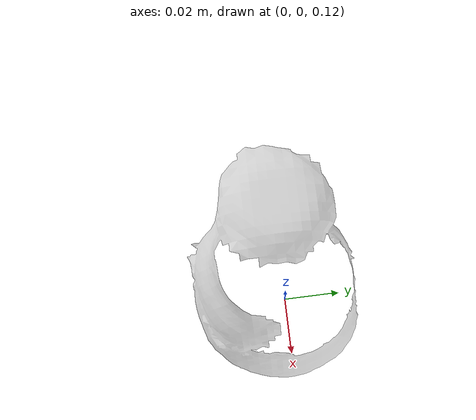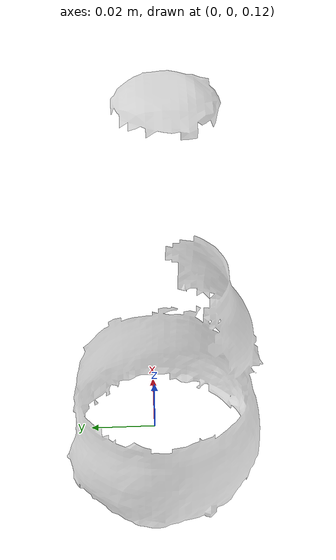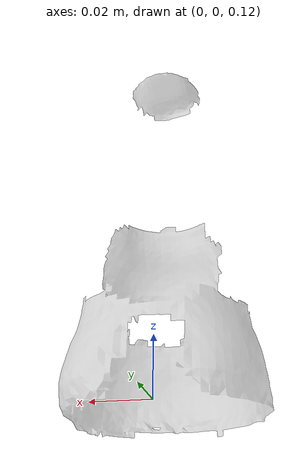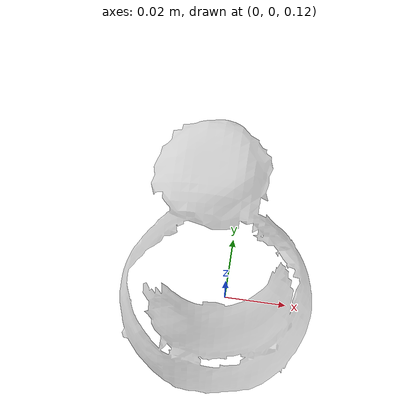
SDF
<?xml version='1.0'?>
<sdf version="1.4">
  <model name="coca_cola_glass_bottle">
    <static>false</static>
    <link name="link">
      <inertial>
        <pose>-0.0029250865002093136 -0.003320177149531965 0.1625379667111629 0.0010158357703337758 0.01104479310000785 -1.9643004717805812</pose>
        <mass>0.02291616106859938</mass>
        <inertia>
          <ixx>3.0232991666316644e-05</ixx>
          <ixy>-1.4498557830195633e-21</ixy>
          <ixz>1.013458691316433e-21</ixz>
          <iyy>3.002462074266718e-05</iyy>
          <iyz>-1.453830520824596e-21</iyz>
          <izz>7.685242558139656e-06</izz>
        </inertia>
      </inertial>
      <collision name="collision">
        <geometry>
          <mesh>
            <!-- Use a downsampled mesh for collisions -->
            <uri>model:///coca_cola_glass_bottle/coca_cola_glass_bottle_250_collision.obj</uri>
	        </mesh>
        </geometry>
        <surface>
      </surface>
      </collision>
      <visual name="visual">
        <geometry>
          <mesh>
            <uri>model:///coca_cola_glass_bottle/optimized_tsdf_texture_mapped_mesh.obj</uri>
	        </mesh>
        </geometry>
        <material>
          <script>
            <uri>model:///coca_cola_glass_bottle/coca_cola_glass_bottle.material</uri>
            <name>coca_cola_glass_bottle</name>
          </script>
        </material>
      </visual>
    </link>
  </model>
</sdf>
